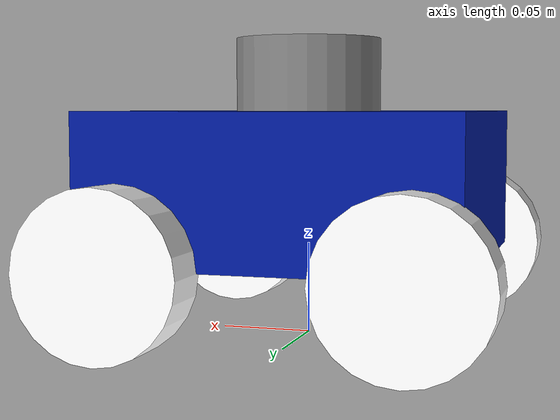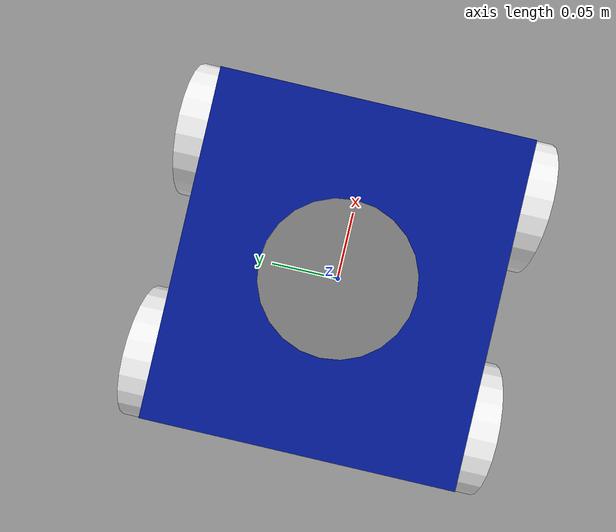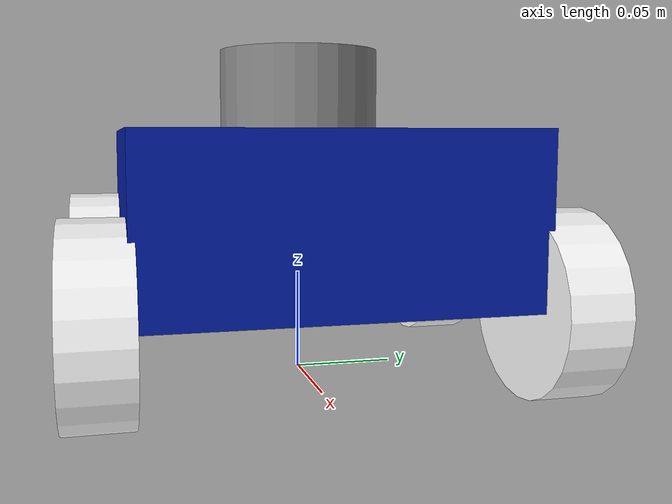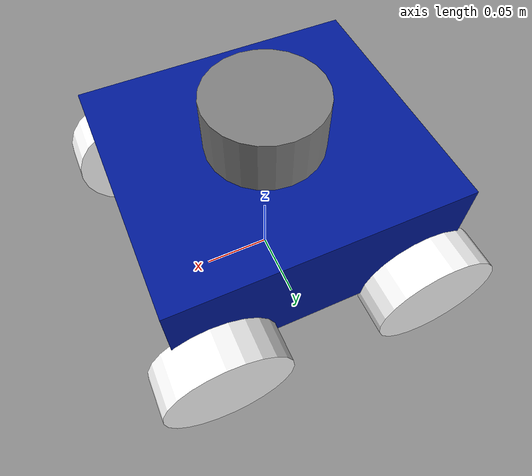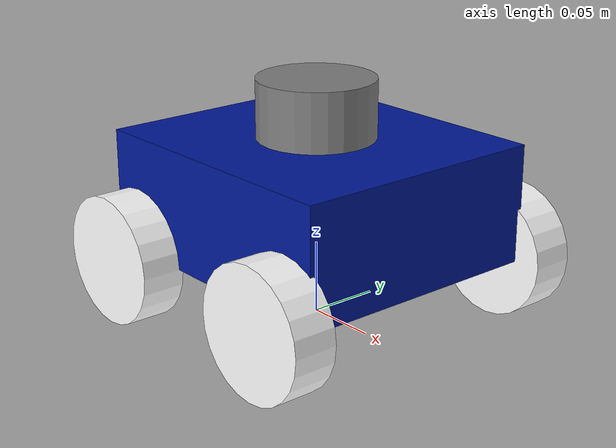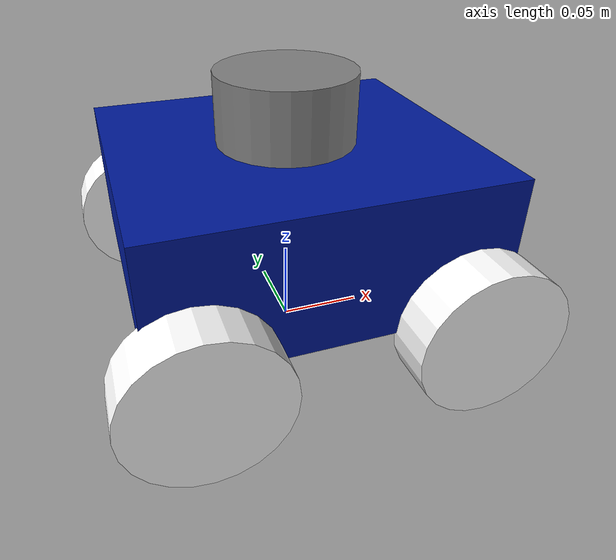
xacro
<?xml version="1.0"?>
<robot name="robo" xmlns:xacro="http://www.ros.org/wiki/xacro"
                   xmlns:gz="http://gazebosim.org/schema">

  <!-- ═══════════════ PROPERTIES ═══════════════ -->
  <xacro:property name="wheel_radius"     value="0.0439222"/>
  <xacro:property name="wheel_width"      value="0.03"/>
  <xacro:property name="wheel_separation" value="0.204108"/>   <!-- Y distance between left & right -->
  <xacro:property name="wheelbase"        value="0.151410"/>   <!-- X distance between front & back -->

  <!-- ═══════════════ BASE FOOTPRINT ═══════════════ -->
  <link name="base_footprint"/>

  <joint name="base_footprint_joint" type="fixed">
    <origin xyz="0 0 ${wheel_radius}" rpy="0 0 0"/>
    <parent link="base_footprint"/>
    <child  link="base_link"/>
  </joint>

  <!-- ═══════════════ BASE LINK ═══════════════ -->
  <link name="base_link">
    <inertial>
      <origin xyz="0 0 0" rpy="0 0 0"/>
      <mass value="2.5"/>
      <inertia ixx="0.03311" iyy="0.019021" izz="0.0495"
               ixy="0" iyz="0" ixz="0"/>
    </inertial>
    <visual>
      <origin xyz="0 0 0.04" rpy="0 0 0"/>
      <geometry><box size="0.20 0.18 0.08"/></geometry>
      <material name="blue"><color rgba="0 0.1 0.6 1"/></material>
    </visual>
    <collision>
      <origin xyz="0 0 0.04" rpy="0 0 0"/>
      <geometry><box size="0.20 0.18 0.08"/></geometry>
    </collision>
  </link>

  <xacro:macro name="wheel" params="name jx jy fdir1_x fdir1_y">

    <link name="${name}">
      <inertial>
        <origin xyz="0 0 0" rpy="0 0 0"/>
        <mass value="0.789"/>
        <inertia ixx="0.000422" iyy="0.000761" izz="0.000422"
                 ixy="0" iyz="0" ixz="0"/>
      </inertial>
      <visual>
        <origin xyz="0 0 0" rpy="1.5708 0 0"/>
        <geometry><cylinder radius="${wheel_radius}" length="${wheel_width}"/></geometry>
        <material name="white"><color rgba="1 1 1 1"/></material>
      </visual>
      <!-- SPHERE for collision — required for gz-sim mecanum fdir1 to work -->
      <collision>
        <origin xyz="0 0 0" rpy="0 0 0"/>
        <geometry><sphere radius="${wheel_radius}"/></geometry>
      </collision>
    </link>

    <joint name="${name}_joint" type="continuous">
      <origin xyz="${jx} ${jy} 0" rpy="0 0 0"/>
      <parent link="base_link"/>
      <child  link="${name}"/>
      <axis xyz="0 1 0"/>
      <dynamics damping="0.01" friction="0.0"/>
    </joint>

    <!-- Anisotropic friction — gz:expressed_in tells gz-sim the frame for fdir1 -->
    <gazebo reference="${name}">
      <material>Gazebo/White</material>
      <collision>
        <surface>
          <friction>
            <ode>
              <mu>1.5</mu>
              <mu2>0.0</mu2>
              <fdir1 gz:expressed_in="base_footprint">${fdir1_x} ${fdir1_y} 0</fdir1>
            </ode>
          </friction>
        </surface>
      </collision>
    </gazebo>

  </xacro:macro>

  <xacro:wheel name="front_left"
    jx=" ${wheelbase/2}"  jy=" ${wheel_separation/2}"
    fdir1_x="1" fdir1_y="-1"/>

  <xacro:wheel name="front_right"
    jx=" ${wheelbase/2}"  jy="-${wheel_separation/2}"
    fdir1_x="1" fdir1_y="1"/>

  <xacro:wheel name="rear_left"
    jx="-${wheelbase/2}"  jy=" ${wheel_separation/2}"
    fdir1_x="1" fdir1_y="1"/>

  <xacro:wheel name="rear_right"
    jx="-${wheelbase/2}"  jy="-${wheel_separation/2}"
    fdir1_x="1" fdir1_y="-1"/>

  <!-- ═══════════════ LIDAR ═══════════════ -->
  <link name="lidar_link">
    <inertial>
      <origin xyz="0 0 0" rpy="0 0 0"/>
      <mass value="0.2"/>
      <inertia ixx="5.2e-05" iyy="5.2e-05" izz="5.9e-05"
               ixy="0" iyz="0" ixz="0"/>
    </inertial>
    <visual>
      <origin xyz="0 0 0" rpy="0 0 0"/>
      <geometry><cylinder radius="0.04" length="0.04"/></geometry>
      <material name="grey"><color rgba="0.5 0.5 0.5 1"/></material>
    </visual>
    <collision>
      <origin xyz="0 0 0" rpy="0 0 0"/>
      <geometry><cylinder radius="0.04" length="0.04"/></geometry>
    </collision>
  </link>
  <joint name="lidar_joint" type="fixed">
    <origin xyz="0 0 0.10" rpy="0 0 0"/>
    <parent link="base_link"/>
    <child  link="lidar_link"/>
  </joint>

  <!-- ═══════════════ IMU ═══════════════ -->
  <link name="imu_link">
    <inertial>
      <origin xyz="0 0 0" rpy="0 0 0"/>
      <mass value="0.01"/>
      <inertia ixx="1e-6" iyy="1e-6" izz="1e-6"
               ixy="0" iyz="0" ixz="0"/>
    </inertial>
    <visual>
      <geometry><box size="0.02 0.02 0.01"/></geometry>
      <material name="red"><color rgba="0.8 0 0 1"/></material>
    </visual>
    <collision>
      <geometry><box size="0.02 0.02 0.01"/></geometry>
    </collision>
  </link>
  <joint name="imu_joint" type="fixed">
    <origin xyz="0 0 0.05" rpy="0 0 0"/>
    <parent link="base_link"/>
    <child  link="imu_link"/>
  </joint>

  <!-- ═══════════════ GAZEBO PLUGINS ═══════════════ -->
  <gazebo>
    <plugin filename="gz-sim-mecanum-drive-system"
            name="gz::sim::systems::MecanumDrive">
      <front_left_joint>front_left_joint</front_left_joint>
      <front_right_joint>front_right_joint</front_right_joint>
      <back_left_joint>rear_left_joint</back_left_joint>
      <back_right_joint>rear_right_joint</back_right_joint>
      <wheel_separation>${wheel_separation}</wheel_separation>
      <wheelbase>${wheelbase}</wheelbase>
      <wheel_radius>${wheel_radius}</wheel_radius>
      <topic>cmd_vel</topic>
      <odom_topic>odom</odom_topic>
      <tf_topic>tf</tf_topic>
      <frame_id>odom</frame_id>
      <child_frame_id>base_footprint</child_frame_id>
      <odom_publish_frequency>50</odom_publish_frequency>
      <publish_odom>true</publish_odom>
      <publish_odom_tf>true</publish_odom_tf>
      <publish_wheel_tf>false</publish_wheel_tf>
      <min_velocity>-2.0</min_velocity>
      <max_velocity>2.0</max_velocity>
      <min_acceleration>-5.0</min_acceleration>
      <max_acceleration>5.0</max_acceleration>
    </plugin>
  </gazebo>

  <gazebo>
    <plugin filename="gz-sim-joint-state-publisher-system"
            name="gz::sim::systems::JointStatePublisher">
      <joint_name>front_left_joint</joint_name>
      <joint_name>front_right_joint</joint_name>
      <joint_name>rear_left_joint</joint_name>
      <joint_name>rear_right_joint</joint_name>
      <topic>joint_states</topic>
      <update_rate>50</update_rate>
    </plugin>
  </gazebo>

  <!-- 2-D LiDAR sensor -->
  <gazebo reference="lidar_link">
    <material>Gazebo/Grey</material>
    <sensor name="gpu_lidar" type="gpu_lidar">
      <pose>0 0 0 0 0 0</pose>
      <topic>scan</topic>
      <update_rate>10</update_rate>
      <ray>
        <scan>
          <horizontal>
            <samples>360</samples>
            <resolution>1</resolution>
            <min_angle>-3.14159265</min_angle>
            <max_angle> 3.14159265</max_angle>
          </horizontal>
        </scan>
        <range>
          <min>0.15</min>
          <max>12.0</max>
          <resolution>0.01</resolution>
        </range>
        <noise>
          <type>gaussian</type>
          <mean>0.0</mean>
          <stddev>0.01</stddev>
        </noise>
      </ray>
      <always_on>true</always_on>
      <visualize>true</visualize>
      <gz_frame_id>lidar_link</gz_frame_id>
    </sensor>
  </gazebo>

  <!-- IMU sensor -->
  <gazebo reference="imu_link">
    <material>Gazebo/Red</material>
    <sensor name="imu_sensor" type="imu">
      <pose>0 0 0 0 0 0</pose>
      <topic>imu</topic>
      <update_rate>100</update_rate>
      <imu>
        <angular_velocity>
          <x><noise type="gaussian"><mean>0.0</mean><stddev>2e-4</stddev>
            <bias_mean>0.0000075</bias_mean><bias_stddev>0.0000008</bias_stddev></noise></x>
          <y><noise type="gaussian"><mean>0.0</mean><stddev>2e-4</stddev>
            <bias_mean>0.0000075</bias_mean><bias_stddev>0.0000008</bias_stddev></noise></y>
          <z><noise type="gaussian"><mean>0.0</mean><stddev>2e-4</stddev>
            <bias_mean>0.0000075</bias_mean><bias_stddev>0.0000008</bias_stddev></noise></z>
        </angular_velocity>
        <linear_acceleration>
          <x><noise type="gaussian"><mean>0.0</mean><stddev>1.7e-2</stddev>
            <bias_mean>0.1</bias_mean><bias_stddev>0.001</bias_stddev></noise></x>
          <y><noise type="gaussian"><mean>0.0</mean><stddev>1.7e-2</stddev>
            <bias_mean>0.1</bias_mean><bias_stddev>0.001</bias_stddev></noise></y>
          <z><noise type="gaussian"><mean>0.0</mean><stddev>1.7e-2</stddev>
            <bias_mean>0.1</bias_mean><bias_stddev>0.001</bias_stddev></noise></z>
        </linear_acceleration>
      </imu>
      <always_on>true</always_on>
      <gz_frame_id>imu_link</gz_frame_id>
    </sensor>
  </gazebo>

  <gazebo reference="base_link"><material>Gazebo/Blue</material></gazebo>

</robot>
